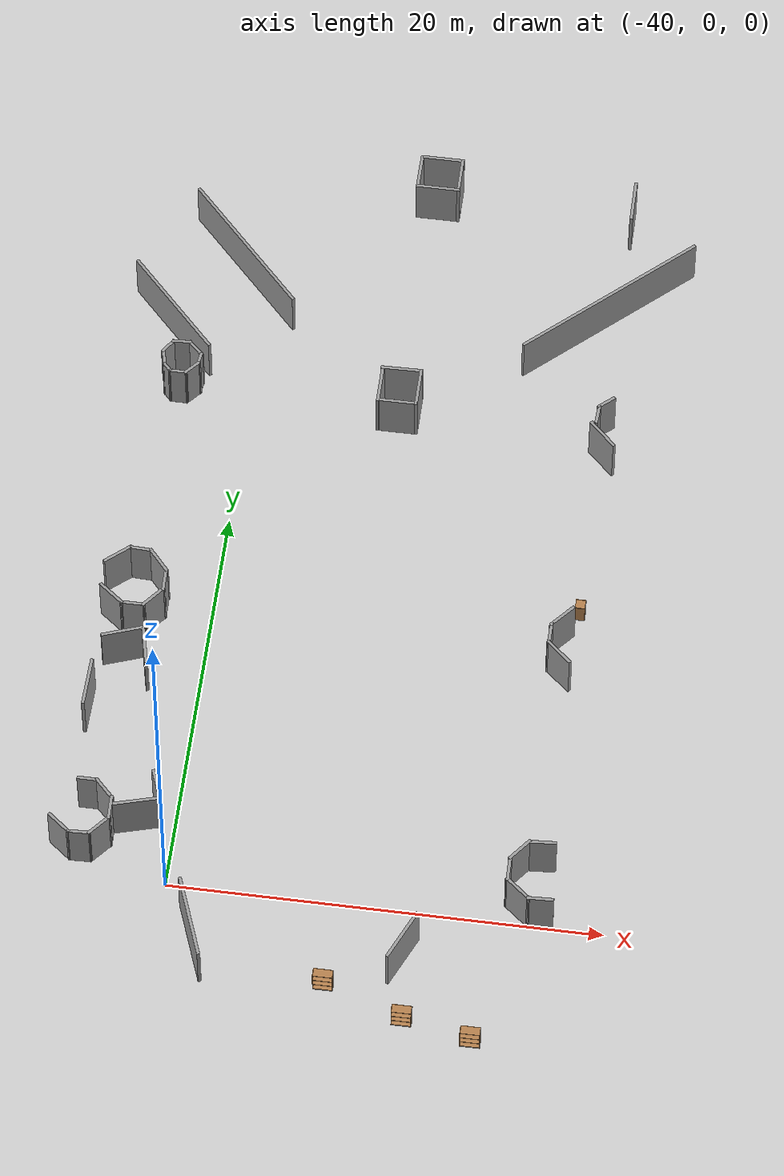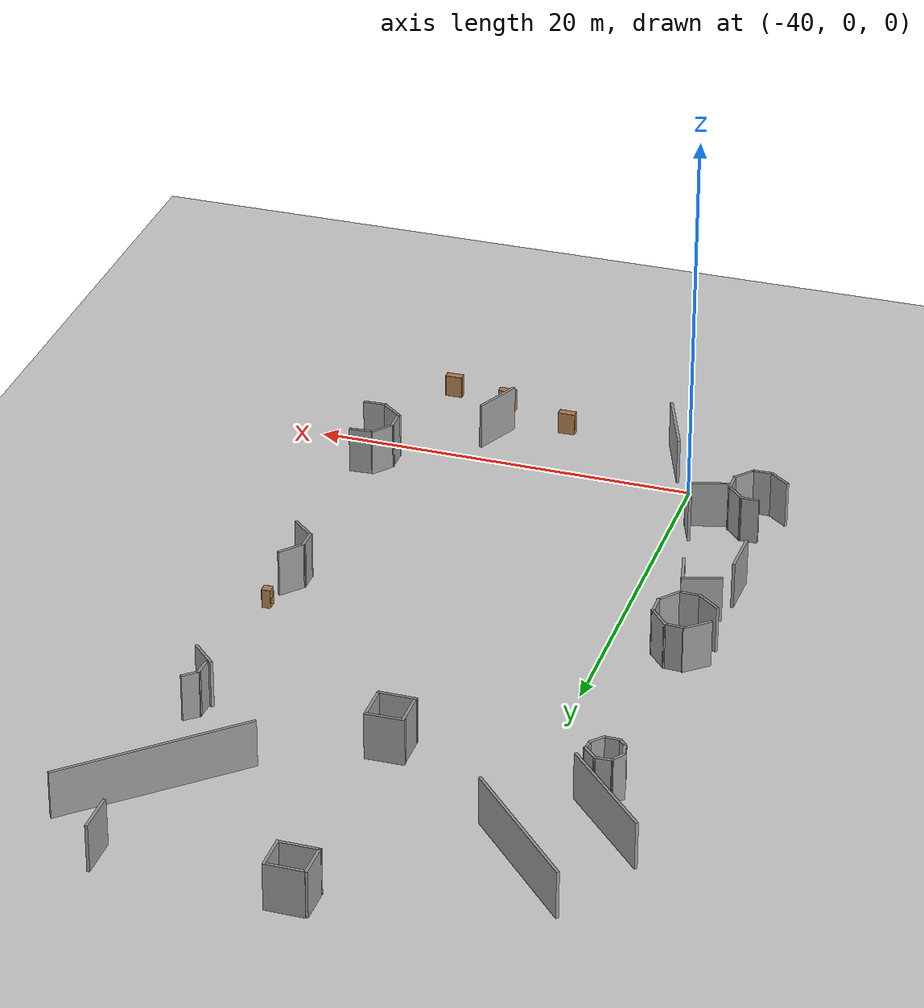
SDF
<sdf version="1.6">
 <world name="default">
  <model name="ground_plane">
   <static>1</static>
   <link name="link">
    <collision name="collision">
     <geometry><plane><normal>0 0 1</normal><size>100 100</size></plane></geometry>
     <surface><friction><ode><mu>100</mu><mu2>50</mu2></ode></friction></surface>
    </collision>
    <visual name="visual">
     <cast_shadows>0</cast_shadows>
     <geometry><plane><normal>0 0 1</normal><size>100 100</size></plane></geometry>
     <material>
      <script><uri>file://media/materials/scripts/gazebo.material</uri><name>Gazebo/Grey</name></script>
     </material>
    </visual>
   </link>
  </model>
  <model name="mall_new_reduce_size">
   <pose>-6.8092 7.5529 0 0 -0 0</pose>
   <link name="Wall_106">
    <collision name="Wall_106_Collision">
     <geometry><box><size>0.88293 0.15 2.5</size></box></geometry>
     <pose>0 0 1.25 0 -0 0</pose>
    </collision>
    <visual name="Wall_106_Visual">
     <pose>0 0 1.25 0 -0 0</pose>
     <geometry><box><size>0.88293 0.15 2.5</size></box></geometry>
     <material>
      <script><uri>file://media/materials/scripts/gazebo.material</uri><name>Gazebo/Grey</name></script>
      <ambient>1 1 1 1</ambient>
     </material>
     <meta><layer>0</layer></meta>
    </visual>
    <pose>-37.2247 20.3731 0 0 -0 1.00343</pose>
   </link>
   <link name="Wall_107">
    <collision name="Wall_107_Collision">
     <geometry><box><size>0.940533 0.15 2.5</size></box></geometry>
     <pose>0 0 1.25 0 -0 0</pose>
    </collision>
    <visual name="Wall_107_Visual">
     <pose>0 0 1.25 0 -0 0</pose>
     <geometry><box><size>0.940533 0.15 2.5</size></box></geometry>
     <material>
      <script><uri>file://media/materials/scripts/gazebo.material</uri><name>Gazebo/Grey</name></script>
      <ambient>1 1 1 1</ambient>
     </material>
     <meta><layer>0</layer></meta>
    </visual>
    <pose>-36.633 20.7072 0 0 -0 0.04939</pose>
   </link>
   <link name="Wall_108">
    <collision name="Wall_108_Collision">
     <geometry><box><size>1.04338 0.15 2.5</size></box></geometry>
     <pose>0 0 1.25 0 -0 0</pose>
    </collision>
    <visual name="Wall_108_Visual">
     <pose>0 0 1.25 0 -0 0</pose>
     <geometry><box><size>1.04338 0.15 2.5</size></box></geometry>
     <material>
      <script><uri>file://media/materials/scripts/gazebo.material</uri><name>Gazebo/Grey</name></script>
      <ambient>1 1 1 1</ambient>
     </material>
     <meta><layer>0</layer></meta>
    </visual>
    <pose>-35.9265 20.4122 0 0 -0 -0.780985</pose>
   </link>
   <link name="Wall_109">
    <collision name="Wall_109_Collision">
     <geometry><box><size>0.676427 0.15 2.5</size></box></geometry>
     <pose>0 0 1.25 0 -0 0</pose>
    </collision>
    <visual name="Wall_109_Visual">
     <pose>0 0 1.25 0 -0 0</pose>
     <geometry><box><size>0.676427 0.15 2.5</size></box></geometry>
     <material>
      <script><uri>file://media/materials/scripts/gazebo.material</uri><name>Gazebo/Grey</name></script>
      <ambient>1 1 1 1</ambient>
     </material>
     <meta><layer>0</layer></meta>
    </visual>
    <pose>-35.6455 19.8364 0 0 -0 -1.68757</pose>
   </link>
   <link name="Wall_110">
    <collision name="Wall_110_Collision">
     <geometry><box><size>0.945582 0.15 2.5</size></box></geometry>
     <pose>0 0 1.25 0 -0 0</pose>
    </collision>
    <visual name="Wall_110_Visual">
     <pose>0 0 1.25 0 -0 0</pose>
     <geometry><box><size>0.945582 0.15 2.5</size></box></geometry>
     <material>
      <script><uri>file://media/materials/scripts/gazebo.material</uri><name>Gazebo/Grey</name></script>
      <ambient>1 1 1 1</ambient>
     </material>
     <meta><layer>0</layer></meta>
    </visual>
    <pose>-35.9305 19.2738 0 0 -0 -2.28278</pose>
   </link>
   <link name="Wall_111">
    <collision name="Wall_111_Collision">
     <geometry><box><size>0.906136 0.15 2.5</size></box></geometry>
     <pose>0 0 1.25 0 -0 0</pose>
    </collision>
    <visual name="Wall_111_Visual">
     <pose>0 0 1.25 0 -0 0</pose>
     <geometry><box><size>0.906136 0.15 2.5</size></box></geometry>
     <material>
      <script><uri>file://media/materials/scripts/gazebo.material</uri><name>Gazebo/Grey</name></script>
      <ambient>1 1 1 1</ambient>
     </material>
     <meta><layer>0</layer></meta>
    </visual>
    <pose>-36.5684 18.981 0 0 -0 3.13422</pose>
   </link>
   <link name="Wall_112">
    <collision name="Wall_112_Collision">
     <geometry><box><size>0.599997 0.15 2.5</size></box></geometry>
     <pose>0 0 1.25 0 -0 0</pose>
    </collision>
    <visual name="Wall_112_Visual">
     <pose>0 0 1.25 0 -0 0</pose>
     <geometry><box><size>0.599997 0.15 2.5</size></box></geometry>
     <material>
      <script><uri>file://media/materials/scripts/gazebo.material</uri><name>Gazebo/Grey</name></script>
      <ambient>1 1 1 1</ambient>
     </material>
     <meta><layer>0</layer></meta>
    </visual>
    <pose>-37.1032 19.1505 0 0 -0 2.30701</pose>
   </link>
   <link name="Wall_116">
    <collision name="Wall_116_Collision">
     <geometry><box><size>0.795039 0.15 2.5</size></box></geometry>
     <pose>0 0 1.25 0 -0 0</pose>
    </collision>
    <visual name="Wall_116_Visual">
     <pose>0 0 1.25 0 -0 0</pose>
     <geometry><box><size>0.795039 0.15 2.5</size></box></geometry>
     <material>
      <script><uri>file://media/materials/scripts/gazebo.material</uri><name>Gazebo/Grey</name></script>
      <ambient>1 1 1 1</ambient>
     </material>
     <meta><layer>0</layer></meta>
    </visual>
    <pose>-37.3234 19.6378 0 0 -0 1.78689</pose>
   </link>
   <link name="Wall_120">
    <collision name="Wall_120_Collision">
     <geometry><box><size>2 0.15 2.5</size></box></geometry>
     <pose>0 0 1.25 0 -0 0</pose>
    </collision>
    <visual name="Wall_120_Visual">
     <pose>0 0 1.25 0 -0 0</pose>
     <geometry><box><size>2 0.15 2.5</size></box></geometry>
     <material>
      <script><uri>file://media/materials/scripts/gazebo.material</uri><name>Gazebo/Grey</name></script>
      <ambient>1 1 1 1</ambient>
     </material>
     <meta><layer>0</layer></meta>
    </visual>
    <pose>-26.9558 19.541 0 0 -0 -1.5708</pose>
   </link>
   <link name="Wall_121">
    <collision name="Wall_121_Collision">
     <geometry><box><size>1.9668 0.15 2.5</size></box></geometry>
     <pose>0 0 1.25 0 -0 0</pose>
    </collision>
    <visual name="Wall_121_Visual">
     <pose>0 0 1.25 0 -0 0</pose>
     <geometry><box><size>1.9668 0.15 2.5</size></box></geometry>
     <material>
      <script><uri>file://media/materials/scripts/gazebo.material</uri><name>Gazebo/Grey</name></script>
      <ambient>1 1 1 1</ambient>
     </material>
     <meta><layer>0</layer></meta>
    </visual>
    <pose>-26.0474 18.619 0 0 -0 0.003382</pose>
   </link>
   <link name="Wall_122">
    <collision name="Wall_122_Collision">
     <geometry><box><size>2.02653 0.15 2.5</size></box></geometry>
     <pose>0 0 1.25 0 -0 0</pose>
    </collision>
    <visual name="Wall_122_Visual">
     <pose>0 0 1.25 0 -0 0</pose>
     <geometry><box><size>2.02653 0.15 2.5</size></box></geometry>
     <material>
      <script><uri>file://media/materials/scripts/gazebo.material</uri><name>Gazebo/Grey</name></script>
      <ambient>1 1 1 1</ambient>
     </material>
     <meta><layer>0</layer></meta>
    </visual>
    <pose>-25.1383 19.554 0 0 -0 1.57003</pose>
   </link>
   <link name="Wall_123">
    <collision name="Wall_123_Collision">
     <geometry><box><size>1.99983 0.15 2.5</size></box></geometry>
     <pose>0 0 1.25 0 -0 0</pose>
    </collision>
    <visual name="Wall_123_Visual">
     <pose>0 0 1.25 0 -0 0</pose>
     <geometry><box><size>1.99983 0.15 2.5</size></box></geometry>
     <material>
      <script><uri>file://media/materials/scripts/gazebo.material</uri><name>Gazebo/Grey</name></script>
      <ambient>1 1 1 1</ambient>
     </material>
     <meta><layer>0</layer></meta>
    </visual>
    <pose>-26.056 20.4954 0 0 -0 -3.12426</pose>
   </link>
   <link name="Wall_17">
    <collision name="Wall_17_Collision">
     <geometry><box><size>6.11812 0.15 2.5</size></box></geometry>
     <pose>0 0 1.25 0 -0 0</pose>
    </collision>
    <visual name="Wall_17_Visual">
     <pose>0 0 1.25 0 -0 0</pose>
     <geometry><box><size>6.11812 0.15 2.5</size></box></geometry>
     <material>
      <script><uri>file://media/materials/scripts/gazebo.material</uri><name>Gazebo/Grey</name></script>
      <ambient>1 1 1 1</ambient>
     </material>
     <meta><layer>0</layer></meta>
    </visual>
    <pose>-37.3721 22.8899 0 0 -0 -0.823537</pose>
   </link>
   <link name="Wall_23">
    <collision name="Wall_23_Collision">
     <geometry><box><size>8.04183 0.15 2.5</size></box></geometry>
     <pose>0 0 1.25 0 -0 0</pose>
    </collision>
    <visual name="Wall_23_Visual">
     <pose>0 0 1.25 0 -0 0</pose>
     <geometry><box><size>8.04183 0.15 2.5</size></box></geometry>
     <material>
      <script><uri>file://media/materials/scripts/gazebo.material</uri><name>Gazebo/Grey</name></script>
      <ambient>1 1 1 1</ambient>
     </material>
     <meta><layer>0</layer></meta>
    </visual>
    <pose>-34.4403 26.7968 0 0 -0 -0.828664</pose>
   </link>
   <link name="Wall_299">
    <collision name="Wall_299_Collision">
     <geometry><box><size>1.25244 0.15 2.5</size></box></geometry>
     <pose>0 0 1.25 0 -0 0</pose>
    </collision>
    <visual name="Wall_299_Visual">
     <pose>0 0 1.25 0 -0 0</pose>
     <geometry><box><size>1.25244 0.15 2.5</size></box></geometry>
     <material>
      <script><uri>file://media/materials/scripts/gazebo.material</uri><name>Gazebo/Grey</name></script>
      <ambient>1 1 1 1</ambient>
     </material>
     <meta><layer>0</layer></meta>
    </visual>
    <pose>-16.3634 -4.50577 0 0 -0 0.066556</pose>
   </link>
   <link name="Wall_303">
    <collision name="Wall_303_Collision">
     <geometry><box><size>1.23632 0.15 2.5</size></box></geometry>
     <pose>0 0 1.25 0 -0 0</pose>
    </collision>
    <visual name="Wall_303_Visual">
     <pose>0 0 1.25 0 -0 0</pose>
     <geometry><box><size>1.23632 0.15 2.5</size></box></geometry>
     <material>
      <script><uri>file://media/materials/scripts/gazebo.material</uri><name>Gazebo/Grey</name></script>
      <ambient>1 1 1 1</ambient>
     </material>
     <meta><layer>0</layer></meta>
    </visual>
    <pose>-16.1437 -7.44622 0 0 -0 -3.10299</pose>
   </link>
   <link name="Wall_304">
    <collision name="Wall_304_Collision">
     <geometry><box><size>1.52701 0.15 2.5</size></box></geometry>
     <pose>0 0 1.25 0 -0 0</pose>
    </collision>
    <visual name="Wall_304_Visual">
     <pose>0 0 1.25 0 -0 0</pose>
     <geometry><box><size>1.52701 0.15 2.5</size></box></geometry>
     <material>
      <script><uri>file://media/materials/scripts/gazebo.material</uri><name>Gazebo/Grey</name></script>
      <ambient>1 1 1 1</ambient>
     </material>
     <meta><layer>0</layer></meta>
    </visual>
    <pose>-17.2005 -7.03707 0 0 -0 2.45115</pose>
   </link>
   <link name="Wall_305">
    <collision name="Wall_305_Collision">
     <geometry><box><size>1.2495 0.15 2.5</size></box></geometry>
     <pose>0 0 1.25 0 -0 0</pose>
    </collision>
    <visual name="Wall_305_Visual">
     <pose>0 0 1.25 0 -0 0</pose>
     <geometry><box><size>1.2495 0.15 2.5</size></box></geometry>
     <material>
      <script><uri>file://media/materials/scripts/gazebo.material</uri><name>Gazebo/Grey</name></script>
      <ambient>1 1 1 1</ambient>
     </material>
     <meta><layer>0</layer></meta>
    </visual>
    <pose>-17.7276 -6.04885 0 0 -0 1.57925</pose>
   </link>
   <link name="Wall_306">
    <collision name="Wall_306_Collision">
     <geometry><box><size>1.3668 0.15 2.5</size></box></geometry>
     <pose>0 0 1.25 0 -0 0</pose>
    </collision>
    <visual name="Wall_306_Visual">
     <pose>0 0 1.25 0 -0 0</pose>
     <geometry><box><size>1.3668 0.15 2.5</size></box></geometry>
     <material>
      <script><uri>file://media/materials/scripts/gazebo.material</uri><name>Gazebo/Grey</name></script>
      <ambient>1 1 1 1</ambient>
     </material>
     <meta><layer>0</layer></meta>
    </visual>
    <pose>-17.3575 -5.01145 0 0 -0 0.907215</pose>
   </link>
   <link name="Wall_309">
    <collision name="Wall_309_Collision">
     <geometry><box><size>2.66375 0.15 2.5</size></box></geometry>
     <pose>0 0 1.25 0 -0 0</pose>
    </collision>
    <visual name="Wall_309_Visual">
     <pose>0 0 1.25 0 -0 0</pose>
     <geometry><box><size>2.66375 0.15 2.5</size></box></geometry>
     <material>
      <script><uri>file://media/materials/scripts/gazebo.material</uri><name>Gazebo/Grey</name></script>
      <ambient>1 1 1 1</ambient>
     </material>
     <meta><layer>0</layer></meta>
    </visual>
    <pose>-22.0492 -10.0757 0 0 -0 1.15356</pose>
   </link>
   <link name="Wall_317">
    <collision name="Wall_317_Collision">
     <geometry><box><size>4.0797 0.15 2.5</size></box></geometry>
     <pose>0 0 1.25 0 -0 0</pose>
    </collision>
    <visual name="Wall_317_Visual">
     <pose>0 0 1.25 0 -0 0</pose>
     <geometry><box><size>4.0797 0.15 2.5</size></box></geometry>
     <material>
      <script><uri>file://media/materials/scripts/gazebo.material</uri><name>Gazebo/Grey</name></script>
      <ambient>1 1 1 1</ambient>
     </material>
     <meta><layer>0</layer></meta>
    </visual>
    <pose>-31.6512 -10.3768 0 0 -0 -1.21551</pose>
   </link>
   <link name="Wall_335">
    <collision name="Wall_335_Collision">
     <geometry><box><size>1.56516 0.15 2.5</size></box></geometry>
     <pose>0 0 1.25 0 -0 0</pose>
    </collision>
    <visual name="Wall_335_Visual">
     <pose>0 0 1.25 0 -0 0</pose>
     <geometry><box><size>1.56516 0.15 2.5</size></box></geometry>
     <material>
      <script><uri>file://media/materials/scripts/gazebo.material</uri><name>Gazebo/Grey</name></script>
      <ambient>1 1 1 1</ambient>
     </material>
     <meta><layer>0</layer></meta>
    </visual>
    <pose>-16.8295 5.70779 0 0 -0 2.41041</pose>
   </link>
   <link name="Wall_336">
    <collision name="Wall_336_Collision">
     <geometry><box><size>1.15225 0.15 2.5</size></box></geometry>
     <pose>0 0 1.25 0 -0 0</pose>
    </collision>
    <visual name="Wall_336_Visual">
     <pose>0 0 1.25 0 -0 0</pose>
     <geometry><box><size>1.15225 0.15 2.5</size></box></geometry>
     <material>
      <script><uri>file://media/materials/scripts/gazebo.material</uri><name>Gazebo/Grey</name></script>
      <ambient>1 1 1 1</ambient>
     </material>
     <meta><layer>0</layer></meta>
    </visual>
    <pose>-17.3514 6.67174 0 0 -0 1.56118</pose>
   </link>
   <link name="Wall_337">
    <collision name="Wall_337_Collision">
     <geometry><box><size>1.51537 0.15 2.5</size></box></geometry>
     <pose>0 0 1.25 0 -0 0</pose>
    </collision>
    <visual name="Wall_337_Visual">
     <pose>0 0 1.25 0 -0 0</pose>
     <geometry><box><size>1.51537 0.15 2.5</size></box></geometry>
     <material>
      <script><uri>file://media/materials/scripts/gazebo.material</uri><name>Gazebo/Grey</name></script>
      <ambient>1 1 1 1</ambient>
     </material>
     <meta><layer>0</layer></meta>
    </visual>
    <pose>-16.9005 7.68 0 0 -0 0.858721</pose>
   </link>
   <link name="Wall_340">
    <collision name="Wall_340_Collision">
     <geometry><box><size>1.61603 0.15 2.5</size></box></geometry>
     <pose>0 0 1.25 0 -0 0</pose>
    </collision>
    <visual name="Wall_340_Visual">
     <pose>0 0 1.25 0 -0 0</pose>
     <geometry><box><size>1.61603 0.15 2.5</size></box></geometry>
     <material>
      <script><uri>file://media/materials/scripts/gazebo.material</uri><name>Gazebo/Grey</name></script>
      <ambient>1 1 1 1</ambient>
     </material>
     <meta><layer>0</layer></meta>
    </visual>
    <pose>-34.1129 -3.77256 0 0 -0 -1.20963</pose>
   </link>
   <link name="Wall_341">
    <collision name="Wall_341_Collision">
     <geometry><box><size>2.32014 0.15 2.5</size></box></geometry>
     <pose>0 0 1.25 0 -0 0</pose>
    </collision>
    <visual name="Wall_341_Visual">
     <pose>0 0 1.25 0 -0 0</pose>
     <geometry><box><size>2.32014 0.15 2.5</size></box></geometry>
     <material>
      <script><uri>file://media/materials/scripts/gazebo.material</uri><name>Gazebo/Grey</name></script>
      <ambient>1 1 1 1</ambient>
     </material>
     <meta><layer>0</layer></meta>
    </visual>
    <pose>-34.8895 -4.75363 0 0 -0 -2.86593</pose>
   </link>
   <link name="Wall_344">
    <collision name="Wall_344_Collision">
     <geometry><box><size>1 0.15 2.5</size></box></geometry>
     <pose>0 0 1.25 0 -0 0</pose>
    </collision>
    <visual name="Wall_344_Visual">
     <pose>0 0 1.25 0 -0 0</pose>
     <geometry><box><size>1 0.15 2.5</size></box></geometry>
     <material>
      <script><uri>file://media/materials/scripts/gazebo.material</uri><name>Gazebo/Grey</name></script>
      <ambient>1 1 1 1</ambient>
     </material>
     <meta><layer>0</layer></meta>
    </visual>
    <pose>-37.269 -3.87943 0 0 -0 0</pose>
   </link>
   <link name="Wall_345">
    <collision name="Wall_345_Collision">
     <geometry><box><size>1.30987 0.15 2.5</size></box></geometry>
     <pose>0 0 1.25 0 -0 0</pose>
    </collision>
    <visual name="Wall_345_Visual">
     <pose>0 0 1.25 0 -0 0</pose>
     <geometry><box><size>1.30987 0.15 2.5</size></box></geometry>
     <material>
      <script><uri>file://media/materials/scripts/gazebo.material</uri><name>Gazebo/Grey</name></script>
      <ambient>1 1 1 1</ambient>
     </material>
     <meta><layer>0</layer></meta>
    </visual>
    <pose>-36.4425 -4.29785 0 0 -0 -0.805961</pose>
   </link>
   <link name="Wall_346">
    <collision name="Wall_346_Collision">
     <geometry><box><size>1.24209 0.15 2.5</size></box></geometry>
     <pose>0 0 1.25 0 -0 0</pose>
    </collision>
    <visual name="Wall_346_Visual">
     <pose>0 0 1.25 0 -0 0</pose>
     <geometry><box><size>1.24209 0.15 2.5</size></box></geometry>
     <material>
      <script><uri>file://media/materials/scripts/gazebo.material</uri><name>Gazebo/Grey</name></script>
      <ambient>1 1 1 1</ambient>
     </material>
     <meta><layer>0</layer></meta>
    </visual>
    <pose>-36.0325 -5.24519 0 0 -0 -1.53991</pose>
   </link>
   <link name="Wall_347">
    <collision name="Wall_347_Collision">
     <geometry><box><size>1.31923 0.15 2.5</size></box></geometry>
     <pose>0 0 1.25 0 -0 0</pose>
    </collision>
    <visual name="Wall_347_Visual">
     <pose>0 0 1.25 0 -0 0</pose>
     <geometry><box><size>1.31923 0.15 2.5</size></box></geometry>
     <material>
      <script><uri>file://media/materials/scripts/gazebo.material</uri><name>Gazebo/Grey</name></script>
      <ambient>1 1 1 1</ambient>
     </material>
     <meta><layer>0</layer></meta>
    </visual>
    <pose>-36.396 -6.24199 0 0 -0 -2.26043</pose>
   </link>
   <link name="Wall_348">
    <collision name="Wall_348_Collision">
     <geometry><box><size>1.10725 0.15 2.5</size></box></geometry>
     <pose>0 0 1.25 0 -0 0</pose>
    </collision>
    <visual name="Wall_348_Visual">
     <pose>0 0 1.25 0 -0 0</pose>
     <geometry><box><size>1.10725 0.15 2.5</size></box></geometry>
     <material>
      <script><uri>file://media/materials/scripts/gazebo.material</uri><name>Gazebo/Grey</name></script>
      <ambient>1 1 1 1</ambient>
     </material>
     <meta><layer>0</layer></meta>
    </visual>
    <pose>-37.2547 -6.70987 0 0 -0 -3.10635</pose>
   </link>
   <link name="Wall_349">
    <collision name="Wall_349_Collision">
     <geometry><box><size>1.3639 0.15 2.5</size></box></geometry>
     <pose>0 0 1.25 0 -0 0</pose>
    </collision>
    <visual name="Wall_349_Visual">
     <pose>0 0 1.25 0 -0 0</pose>
     <geometry><box><size>1.3639 0.15 2.5</size></box></geometry>
     <material>
      <script><uri>file://media/materials/scripts/gazebo.material</uri><name>Gazebo/Grey</name></script>
      <ambient>1 1 1 1</ambient>
     </material>
     <meta><layer>0</layer></meta>
    </visual>
    <pose>-38.2094 -6.34212 0 0 -0 2.47312</pose>
   </link>
   <link name="Wall_354">
    <collision name="Wall_354_Collision">
     <geometry><box><size>2.05857 0.15 2.5</size></box></geometry>
     <pose>0 0 1.25 0 -0 0</pose>
    </collision>
    <visual name="Wall_354_Visual">
     <pose>0 0 1.25 0 -0 0</pose>
     <geometry><box><size>2.05857 0.15 2.5</size></box></geometry>
     <material>
      <script><uri>file://media/materials/scripts/gazebo.material</uri><name>Gazebo/Grey</name></script>
      <ambient>1 1 1 1</ambient>
     </material>
     <meta><layer>0</layer></meta>
    </visual>
    <pose>-36.9144 4.20159 0 0 -0 0.346103</pose>
   </link>
   <link name="Wall_355">
    <collision name="Wall_355_Collision">
     <geometry><box><size>1.98834 0.15 2.5</size></box></geometry>
     <pose>0 0 1.25 0 -0 0</pose>
    </collision>
    <visual name="Wall_355_Visual">
     <pose>0 0 1.25 0 -0 0</pose>
     <geometry><box><size>1.98834 0.15 2.5</size></box></geometry>
     <material>
      <script><uri>file://media/materials/scripts/gazebo.material</uri><name>Gazebo/Grey</name></script>
      <ambient>1 1 1 1</ambient>
     </material>
     <meta><layer>0</layer></meta>
    </visual>
    <pose>-35.8124 3.62071 0 0 -0 -1.34665</pose>
   </link>
   <link name="Wall_368">
    <collision name="Wall_368_Collision">
     <geometry><box><size>2.43294 0.15 2.5</size></box></geometry>
     <pose>0 0 1.25 0 -0 0</pose>
    </collision>
    <visual name="Wall_368_Visual">
     <pose>0 0 1.25 0 -0 0</pose>
     <geometry><box><size>2.43294 0.15 2.5</size></box></geometry>
     <material>
      <script><uri>file://media/materials/scripts/gazebo.material</uri><name>Gazebo/Grey</name></script>
      <ambient>1 1 1 1</ambient>
     </material>
     <meta><layer>0</layer></meta>
    </visual>
    <pose>-38.1023 1.28298 0 0 -0 1.54864</pose>
   </link>
   <link name="Wall_38">
    <collision name="Wall_38_Collision">
     <geometry><box><size>1.87759 0.15 2.5</size></box></geometry>
     <pose>0 0 1.25 0 -0 0</pose>
    </collision>
    <visual name="Wall_38_Visual">
     <pose>0 0 1.25 0 -0 0</pose>
     <geometry><box><size>1.87759 0.15 2.5</size></box></geometry>
     <material>
      <script><uri>file://media/materials/scripts/gazebo.material</uri><name>Gazebo/Grey</name></script>
      <ambient>1 1 1 1</ambient>
     </material>
     <meta><layer>0</layer></meta>
    </visual>
    <pose>-26.693 32.1923 0 0 -0 -1.57586</pose>
   </link>
   <link name="Wall_381">
    <collision name="Wall_381_Collision">
     <geometry><box><size>1.0607 0.15 2.5</size></box></geometry>
     <pose>0 0 1.25 0 -0 0</pose>
    </collision>
    <visual name="Wall_381_Visual">
     <pose>0 0 1.25 0 -0 0</pose>
     <geometry><box><size>1.0607 0.15 2.5</size></box></geometry>
     <material>
      <script><uri>file://media/materials/scripts/gazebo.material</uri><name>Gazebo/Grey</name></script>
      <ambient>1 1 1 1</ambient>
     </material>
     <meta><layer>0</layer></meta>
    </visual>
    <pose>-36.7557 8.79735 0 0 -0 -0.048953</pose>
   </link>
   <link name="Wall_382">
    <collision name="Wall_382_Collision">
     <geometry><box><size>1.48403 0.15 2.5</size></box></geometry>
     <pose>0 0 1.25 0 -0 0</pose>
    </collision>
    <visual name="Wall_382_Visual">
     <pose>0 0 1.25 0 -0 0</pose>
     <geometry><box><size>1.48403 0.15 2.5</size></box></geometry>
     <material>
      <script><uri>file://media/materials/scripts/gazebo.material</uri><name>Gazebo/Grey</name></script>
      <ambient>1 1 1 1</ambient>
     </material>
     <meta><layer>0</layer></meta>
    </visual>
    <pose>-35.8638 8.28201 0 0 -0 -0.857017</pose>
   </link>
   <link name="Wall_383">
    <collision name="Wall_383_Collision">
     <geometry><box><size>1.20072 0.15 2.5</size></box></geometry>
     <pose>0 0 1.25 0 -0 0</pose>
    </collision>
    <visual name="Wall_383_Visual">
     <pose>0 0 1.25 0 -0 0</pose>
     <geometry><box><size>1.20072 0.15 2.5</size></box></geometry>
     <material>
      <script><uri>file://media/materials/scripts/gazebo.material</uri><name>Gazebo/Grey</name></script>
      <ambient>1 1 1 1</ambient>
     </material>
     <meta><layer>0</layer></meta>
    </visual>
    <pose>-35.4271 7.25246 0 0 -0 -1.54957</pose>
   </link>
   <link name="Wall_384">
    <collision name="Wall_384_Collision">
     <geometry><box><size>1.37998 0.15 2.5</size></box></geometry>
     <pose>0 0 1.25 0 -0 0</pose>
    </collision>
    <visual name="Wall_384_Visual">
     <pose>0 0 1.25 0 -0 0</pose>
     <geometry><box><size>1.37998 0.15 2.5</size></box></geometry>
     <material>
      <script><uri>file://media/materials/scripts/gazebo.material</uri><name>Gazebo/Grey</name></script>
      <ambient>1 1 1 1</ambient>
     </material>
     <meta><layer>0</layer></meta>
    </visual>
    <pose>-35.8104 6.24615 0 0 -0 -2.24365</pose>
   </link>
   <link name="Wall_385">
    <collision name="Wall_385_Collision">
     <geometry><box><size>1.17938 0.15 2.5</size></box></geometry>
     <pose>0 0 1.25 0 -0 0</pose>
    </collision>
    <visual name="Wall_385_Visual">
     <pose>0 0 1.25 0 -0 0</pose>
     <geometry><box><size>1.17938 0.15 2.5</size></box></geometry>
     <material>
      <script><uri>file://media/materials/scripts/gazebo.material</uri><name>Gazebo/Grey</name></script>
      <ambient>1 1 1 1</ambient>
     </material>
     <meta><layer>0</layer></meta>
    </visual>
    <pose>-36.6967 5.7652 0 0 -0 3.14159</pose>
   </link>
   <link name="Wall_386">
    <collision name="Wall_386_Collision">
     <geometry><box><size>1.51794 0.15 2.5</size></box></geometry>
     <pose>0 0 1.25 0 -0 0</pose>
    </collision>
    <visual name="Wall_386_Visual">
     <pose>0 0 1.25 0 -0 0</pose>
     <geometry><box><size>1.51794 0.15 2.5</size></box></geometry>
     <material>
      <script><uri>file://media/materials/scripts/gazebo.material</uri><name>Gazebo/Grey</name></script>
      <ambient>1 1 1 1</ambient>
     </material>
     <meta><layer>0</layer></meta>
    </visual>
    <pose>-37.7496 6.17559 0 0 -0 2.47754</pose>
   </link>
   <link name="Wall_388">
    <collision name="Wall_388_Collision">
     <geometry><box><size>1.55734 0.15 2.5</size></box></geometry>
     <pose>0 0 1.25 0 -0 0</pose>
    </collision>
    <visual name="Wall_388_Visual">
     <pose>0 0 1.25 0 -0 0</pose>
     <geometry><box><size>1.55734 0.15 2.5</size></box></geometry>
     <material>
      <script><uri>file://media/materials/scripts/gazebo.material</uri><name>Gazebo/Grey</name></script>
      <ambient>1 1 1 1</ambient>
     </material>
     <meta><layer>0</layer></meta>
    </visual>
    <pose>-37.7894 8.39163 0 0 -0 0.713085</pose>
   </link>
   <link name="Wall_40">
    <collision name="Wall_40_Collision">
     <geometry><box><size>2.12677 0.15 2.5</size></box></geometry>
     <pose>0 0 1.25 0 -0 0</pose>
    </collision>
    <visual name="Wall_40_Visual">
     <pose>0 0 1.25 0 -0 0</pose>
     <geometry><box><size>2.12677 0.15 2.5</size></box></geometry>
     <material>
      <script><uri>file://media/materials/scripts/gazebo.material</uri><name>Gazebo/Grey</name></script>
      <ambient>1 1 1 1</ambient>
     </material>
     <meta><layer>0</layer></meta>
    </visual>
    <pose>-25.709 31.3193 0 0 -0 -0.000501</pose>
   </link>
   <link name="Wall_42">
    <collision name="Wall_42_Collision">
     <geometry><box><size>1.90642 0.15 2.5</size></box></geometry>
     <pose>0 0 1.25 0 -0 0</pose>
    </collision>
    <visual name="Wall_42_Visual">
     <pose>0 0 1.25 0 -0 0</pose>
     <geometry><box><size>1.90642 0.15 2.5</size></box></geometry>
     <material>
      <script><uri>file://media/materials/scripts/gazebo.material</uri><name>Gazebo/Grey</name></script>
      <ambient>1 1 1 1</ambient>
     </material>
     <meta><layer>0</layer></meta>
    </visual>
    <pose>-24.7208 32.1883 0 0 -0 1.57103</pose>
   </link>
   <link name="Wall_43">
    <collision name="Wall_43_Collision">
     <geometry><box><size>2 0.15 2.5</size></box></geometry>
     <pose>0 0 1.25 0 -0 0</pose>
    </collision>
    <visual name="Wall_43_Visual">
     <pose>0 0 1.25 0 -0 0</pose>
     <geometry><box><size>2 0.15 2.5</size></box></geometry>
     <material>
      <script><uri>file://media/materials/scripts/gazebo.material</uri><name>Gazebo/Grey</name></script>
      <ambient>1 1 1 1</ambient>
     </material>
     <meta><layer>0</layer></meta>
    </visual>
    <pose>-25.646 33.0752 0 0 -0 3.14159</pose>
   </link>
   <link name="Wall_45">
    <collision name="Wall_45_Collision">
     <geometry><box><size>2.19239 0.15 2.5</size></box></geometry>
     <pose>0 0 1.25 0 -0 0</pose>
    </collision>
    <visual name="Wall_45_Visual">
     <pose>0 0 1.25 0 -0 0</pose>
     <geometry><box><size>2.19239 0.15 2.5</size></box></geometry>
     <material>
      <script><uri>file://media/materials/scripts/gazebo.material</uri><name>Gazebo/Grey</name></script>
      <ambient>1 1 1 1</ambient>
     </material>
     <meta><layer>0</layer></meta>
    </visual>
    <pose>-16.247 31.7587 0 0 -0 -1.5708</pose>
   </link>
   <link name="Wall_57">
    <collision name="Wall_57_Collision">
     <geometry><box><size>10.1653 0.15 2.5</size></box></geometry>
     <pose>0 0 1.25 0 -0 0</pose>
    </collision>
    <visual name="Wall_57_Visual">
     <pose>0 0 1.25 0 -0 0</pose>
     <geometry><box><size>10.1653 0.15 2.5</size></box></geometry>
     <material>
      <script><uri>file://media/materials/scripts/gazebo.material</uri><name>Gazebo/Grey</name></script>
      <ambient>1 1 1 1</ambient>
     </material>
     <meta><layer>0</layer></meta>
    </visual>
    <pose>-16.7712 26.0648 0 0 -0 0.74156</pose>
   </link>
   <link name="Wall_62">
    <collision name="Wall_62_Collision">
     <geometry><box><size>1.75 0.15 2.5</size></box></geometry>
     <pose>0 0 1.25 0 -0 0</pose>
    </collision>
    <visual name="Wall_62_Visual">
     <pose>0 0 1.25 0 -0 0</pose>
     <geometry><box><size>1.75 0.15 2.5</size></box></geometry>
     <material>
      <script><uri>file://media/materials/scripts/gazebo.material</uri><name>Gazebo/Grey</name></script>
      <ambient>1 1 1 1</ambient>
     </material>
     <meta><layer>0</layer></meta>
    </visual>
    <pose>-16.2089 18.0457 0 0 -0 -0.785398</pose>
   </link>
   <link name="Wall_71">
    <collision name="Wall_71_Collision">
     <geometry><box><size>0.984159 0.15 2.5</size></box></geometry>
     <pose>0 0 1.25 0 -0 0</pose>
    </collision>
    <visual name="Wall_71_Visual">
     <pose>0 0 1.25 0 -0 0</pose>
     <geometry><box><size>0.984159 0.15 2.5</size></box></geometry>
     <material>
      <script><uri>file://media/materials/scripts/gazebo.material</uri><name>Gazebo/Grey</name></script>
      <ambient>1 1 1 1</ambient>
     </material>
     <meta><layer>0</layer></meta>
    </visual>
    <pose>-16.2277 19.8542 0 0 -0 -2.41751</pose>
   </link>
   <link name="Wall_72">
    <collision name="Wall_72_Collision">
     <geometry><box><size>1.02754 0.15 2.5</size></box></geometry>
     <pose>0 0 1.25 0 -0 0</pose>
    </collision>
    <visual name="Wall_72_Visual">
     <pose>0 0 1.25 0 -0 0</pose>
     <geometry><box><size>1.02754 0.15 2.5</size></box></geometry>
     <material>
      <script><uri>file://media/materials/scripts/gazebo.material</uri><name>Gazebo/Grey</name></script>
      <ambient>1 1 1 1</ambient>
     </material>
     <meta><layer>0</layer></meta>
    </visual>
    <pose>-16.5528 19.1394 0 0 -0 -1.62581</pose>
   </link>
   <static>1</static>
  </model>
  <model name="bookshelf_1">
   <static>1</static>
   <link name="link">
    <inertial><mass>1</mass></inertial>
    <collision name="back">
     <pose>0 0.005 0.6 0 -0 0</pose>
     <geometry><box><size>0.9 0.01 1.2</size></box></geometry>
    </collision>
    <visual name="visual1">
     <pose>0 0.005 0.6 0 -0 0</pose>
     <geometry><box><size>0.9 0.01 1.2</size></box></geometry>
     <material>
      <script><uri>file://media/materials/scripts/gazebo.material</uri><name>Gazebo/Wood</name></script>
     </material>
    </visual>
    <collision name="left_side">
     <pose>0.45 -0.195 0.6 0 -0 0</pose>
     <geometry><box><size>0.02 0.4 1.2</size></box></geometry>
    </collision>
    <visual name="visual2">
     <pose>0.45 -0.195 0.6 0 -0 0</pose>
     <geometry><box><size>0.02 0.4 1.2</size></box></geometry>
     <material>
      <script><uri>file://media/materials/scripts/gazebo.material</uri><name>Gazebo/Wood</name></script>
     </material>
    </visual>
    <collision name="right_side">
     <pose>-0.45 -0.195 0.6 0 -0 0</pose>
     <geometry><box><size>0.02 0.4 1.2</size></box></geometry>
    </collision>
    <visual name="visual3">
     <pose>-0.45 -0.195 0.6 0 -0 0</pose>
     <geometry><box><size>0.02 0.4 1.2</size></box></geometry>
     <material>
      <script><uri>file://media/materials/scripts/gazebo.material</uri><name>Gazebo/Wood</name></script>
     </material>
    </visual>
    <collision name="bottom">
     <pose>0 -0.195 0.03 0 -0 0</pose>
     <geometry><box><size>0.88 0.4 0.06</size></box></geometry>
    </collision>
    <visual name="visual4">
     <pose>0 -0.195 0.03 0 -0 0</pose>
     <geometry><box><size>0.88 0.4 0.06</size></box></geometry>
     <material>
      <script><uri>file://media/materials/scripts/gazebo.material</uri><name>Gazebo/Wood</name></script>
     </material>
    </visual>
    <collision name="top">
     <pose>0 -0.195 1.19 0 -0 0</pose>
     <geometry><box><size>0.88 0.4 0.02</size></box></geometry>
    </collision>
    <visual name="visual5">
     <pose>0 -0.195 1.19 0 -0 0</pose>
     <geometry><box><size>0.88 0.4 0.02</size></box></geometry>
     <material>
      <script><uri>file://media/materials/scripts/gazebo.material</uri><name>Gazebo/Wood</name></script>
     </material>
    </visual>
    <collision name="low_shelf">
     <pose>0 -0.195 0.43 0 -0 0</pose>
     <geometry><box><size>0.88 0.4 0.02</size></box></geometry>
    </collision>
    <visual name="visual6">
     <pose>0 -0.195 0.43 0 -0 0</pose>
     <geometry><box><size>0.88 0.4 0.02</size></box></geometry>
     <material>
      <script><uri>file://media/materials/scripts/gazebo.material</uri><name>Gazebo/Wood</name></script>
     </material>
    </visual>
    <collision name="high_shelf">
     <pose>0 -0.195 0.8 0 -0 0</pose>
     <geometry><box><size>0.88 0.4 0.02</size></box></geometry>
    </collision>
    <visual name="visual7">
     <pose>0 -0.195 0.8 0 -0 0</pose>
     <geometry><box><size>0.88 0.4 0.02</size></box></geometry>
     <material>
      <script><uri>file://media/materials/scripts/gazebo.material</uri><name>Gazebo/Wood</name></script>
     </material>
    </visual>
   </link>
   <pose>-25.3051 -6.09045 0 0 -0 0</pose>
  </model>
  <model name="bookshelf_10">
   <static>1</static>
   <link name="link">
    <inertial><mass>1</mass></inertial>
    <collision name="back">
     <pose>0 0.005 0.6 0 -0 0</pose>
     <geometry><box><size>0.9 0.01 1.2</size></box></geometry>
    </collision>
    <visual name="visual1">
     <pose>0 0.005 0.6 0 -0 0</pose>
     <geometry><box><size>0.9 0.01 1.2</size></box></geometry>
     <material>
      <script><uri>file://media/materials/scripts/gazebo.material</uri><name>Gazebo/Wood</name></script>
     </material>
    </visual>
    <collision name="left_side">
     <pose>0.45 -0.195 0.6 0 -0 0</pose>
     <geometry><box><size>0.02 0.4 1.2</size></box></geometry>
    </collision>
    <visual name="visual2">
     <pose>0.45 -0.195 0.6 0 -0 0</pose>
     <geometry><box><size>0.02 0.4 1.2</size></box></geometry>
     <material>
      <script><uri>file://media/materials/scripts/gazebo.material</uri><name>Gazebo/Wood</name></script>
     </material>
    </visual>
    <collision name="right_side">
     <pose>-0.45 -0.195 0.6 0 -0 0</pose>
     <geometry><box><size>0.02 0.4 1.2</size></box></geometry>
    </collision>
    <visual name="visual3">
     <pose>-0.45 -0.195 0.6 0 -0 0</pose>
     <geometry><box><size>0.02 0.4 1.2</size></box></geometry>
     <material>
      <script><uri>file://media/materials/scripts/gazebo.material</uri><name>Gazebo/Wood</name></script>
     </material>
    </visual>
    <collision name="bottom">
     <pose>0 -0.195 0.03 0 -0 0</pose>
     <geometry><box><size>0.88 0.4 0.06</size></box></geometry>
    </collision>
    <visual name="visual4">
     <pose>0 -0.195 0.03 0 -0 0</pose>
     <geometry><box><size>0.88 0.4 0.06</size></box></geometry>
     <material>
      <script><uri>file://media/materials/scripts/gazebo.material</uri><name>Gazebo/Wood</name></script>
     </material>
    </visual>
    <collision name="top">
     <pose>0 -0.195 1.19 0 -0 0</pose>
     <geometry><box><size>0.88 0.4 0.02</size></box></geometry>
    </collision>
    <visual name="visual5">
     <pose>0 -0.195 1.19 0 -0 0</pose>
     <geometry><box><size>0.88 0.4 0.02</size></box></geometry>
     <material>
      <script><uri>file://media/materials/scripts/gazebo.material</uri><name>Gazebo/Wood</name></script>
     </material>
    </visual>
    <collision name="low_shelf">
     <pose>0 -0.195 0.43 0 -0 0</pose>
     <geometry><box><size>0.88 0.4 0.02</size></box></geometry>
    </collision>
    <visual name="visual6">
     <pose>0 -0.195 0.43 0 -0 0</pose>
     <geometry><box><size>0.88 0.4 0.02</size></box></geometry>
     <material>
      <script><uri>file://media/materials/scripts/gazebo.material</uri><name>Gazebo/Wood</name></script>
     </material>
    </visual>
    <collision name="high_shelf">
     <pose>0 -0.195 0.8 0 -0 0</pose>
     <geometry><box><size>0.88 0.4 0.02</size></box></geometry>
    </collision>
    <visual name="visual7">
     <pose>0 -0.195 0.8 0 -0 0</pose>
     <geometry><box><size>0.88 0.4 0.02</size></box></geometry>
     <material>
      <script><uri>file://media/materials/scripts/gazebo.material</uri><name>Gazebo/Wood</name></script>
     </material>
    </visual>
   </link>
   <pose>-32.2158 -4.05396 0 0 -0 0</pose>
  </model>
  <model name="bookshelf_13">
   <static>1</static>
   <link name="link">
    <inertial><mass>1</mass></inertial>
    <collision name="back">
     <pose>0 0.005 0.6 0 -0 0</pose>
     <geometry><box><size>0.9 0.01 1.2</size></box></geometry>
    </collision>
    <visual name="visual1">
     <pose>0 0.005 0.6 0 -0 0</pose>
     <geometry><box><size>0.9 0.01 1.2</size></box></geometry>
     <material>
      <script><uri>file://media/materials/scripts/gazebo.material</uri><name>Gazebo/Wood</name></script>
     </material>
    </visual>
    <collision name="left_side">
     <pose>0.45 -0.195 0.6 0 -0 0</pose>
     <geometry><box><size>0.02 0.4 1.2</size></box></geometry>
    </collision>
    <visual name="visual2">
     <pose>0.45 -0.195 0.6 0 -0 0</pose>
     <geometry><box><size>0.02 0.4 1.2</size></box></geometry>
     <material>
      <script><uri>file://media/materials/scripts/gazebo.material</uri><name>Gazebo/Wood</name></script>
     </material>
    </visual>
    <collision name="right_side">
     <pose>-0.45 -0.195 0.6 0 -0 0</pose>
     <geometry><box><size>0.02 0.4 1.2</size></box></geometry>
    </collision>
    <visual name="visual3">
     <pose>-0.45 -0.195 0.6 0 -0 0</pose>
     <geometry><box><size>0.02 0.4 1.2</size></box></geometry>
     <material>
      <script><uri>file://media/materials/scripts/gazebo.material</uri><name>Gazebo/Wood</name></script>
     </material>
    </visual>
    <collision name="bottom">
     <pose>0 -0.195 0.03 0 -0 0</pose>
     <geometry><box><size>0.88 0.4 0.06</size></box></geometry>
    </collision>
    <visual name="visual4">
     <pose>0 -0.195 0.03 0 -0 0</pose>
     <geometry><box><size>0.88 0.4 0.06</size></box></geometry>
     <material>
      <script><uri>file://media/materials/scripts/gazebo.material</uri><name>Gazebo/Wood</name></script>
     </material>
    </visual>
    <collision name="top">
     <pose>0 -0.195 1.19 0 -0 0</pose>
     <geometry><box><size>0.88 0.4 0.02</size></box></geometry>
    </collision>
    <visual name="visual5">
     <pose>0 -0.195 1.19 0 -0 0</pose>
     <geometry><box><size>0.88 0.4 0.02</size></box></geometry>
     <material>
      <script><uri>file://media/materials/scripts/gazebo.material</uri><name>Gazebo/Wood</name></script>
     </material>
    </visual>
    <collision name="low_shelf">
     <pose>0 -0.195 0.43 0 -0 0</pose>
     <geometry><box><size>0.88 0.4 0.02</size></box></geometry>
    </collision>
    <visual name="visual6">
     <pose>0 -0.195 0.43 0 -0 0</pose>
     <geometry><box><size>0.88 0.4 0.02</size></box></geometry>
     <material>
      <script><uri>file://media/materials/scripts/gazebo.material</uri><name>Gazebo/Wood</name></script>
     </material>
    </visual>
    <collision name="high_shelf">
     <pose>0 -0.195 0.8 0 -0 0</pose>
     <geometry><box><size>0.88 0.4 0.02</size></box></geometry>
    </collision>
    <visual name="visual7">
     <pose>0 -0.195 0.8 0 -0 0</pose>
     <geometry><box><size>0.88 0.4 0.02</size></box></geometry>
     <material>
      <script><uri>file://media/materials/scripts/gazebo.material</uri><name>Gazebo/Wood</name></script>
     </material>
    </visual>
   </link>
   <pose>-28.484 -5.41316 0 0 -0 0</pose>
  </model>
  <model name="cabinet_2">
   <static>1</static>
   <link name="cabinet_bottom_plate">
    <inertial>
     <pose>0 0 -1 0 -0 0</pose>
     <inertia><ixx>2.05</ixx><ixy>0</ixy><ixz>0</ixz><iyy>2.05</iyy><iyz>0</iyz><izz>2.05</izz></inertia>
     <mass>25</mass>
    </inertial>
    <collision name="cabinet_bottom_plate_geom">
     <pose>0 0 0.01 0 -0 0</pose>
     <geometry><box><size>0.45 0.45 0.02</size></box></geometry>
    </collision>
    <visual name="cabinet_bottom_plate_geom_visual">
     <pose>0 0 0.01 0 -0 0</pose>
     <geometry><box><size>0.45 0.45 0.02</size></box></geometry>
     <material>
      <script><uri>file://media/materials/scripts/gazebo.material</uri><name>Gazebo/Wood</name></script>
     </material>
    </visual>
    <collision name="cabinet_bottom_plate_geom_cabinet_back_plate">
     <pose>0.235 0 0.51 0 -0 0</pose>
     <geometry><box><size>0.02 0.45 1.02</size></box></geometry>
    </collision>
    <visual name="cabinet_bottom_plate_geom_cabinet_back_plate_visual">
     <pose>0.235 0 0.51 0 -0 0</pose>
     <geometry><box><size>0.02 0.45 1.02</size></box></geometry>
     <material>
      <script><uri>file://media/materials/scripts/gazebo.material</uri><name>Gazebo/Wood</name></script>
     </material>
    </visual>
    <collision name="cabinet_bottom_plate_geom_cabinet_left_plate">
     <pose>0 0.235 0.51 0 -0 0</pose>
     <geometry><box><size>0.45 0.02 1.02</size></box></geometry>
    </collision>
    <visual name="cabinet_bottom_plate_geom_cabinet_left_plate_visual">
     <pose>0 0.235 0.51 0 -0 0</pose>
     <geometry><box><size>0.45 0.02 1.02</size></box></geometry>
     <material>
      <script><uri>file://media/materials/scripts/gazebo.material</uri><name>Gazebo/Wood</name></script>
     </material>
    </visual>
    <collision name="cabinet_bottom_plate_geom_cabinet_middle_plate">
     <pose>0 0 0.51 0 -0 0</pose>
     <geometry><box><size>0.45 0.45 0.02</size></box></geometry>
    </collision>
    <visual name="cabinet_bottom_plate_geom_cabinet_middle_plate_visual">
     <pose>0 0 0.51 0 -0 0</pose>
     <geometry><box><size>0.45 0.45 0.02</size></box></geometry>
     <material>
      <script><uri>file://media/materials/scripts/gazebo.material</uri><name>Gazebo/Wood</name></script>
     </material>
    </visual>
    <collision name="cabinet_bottom_plate_geom_cabinet_right_plate">
     <pose>0 -0.235 0.51 0 -0 0</pose>
     <geometry><box><size>0.45 0.02 1.02</size></box></geometry>
    </collision>
    <visual name="cabinet_bottom_plate_geom_cabinet_right_plate_visual">
     <pose>0 -0.235 0.51 0 -0 0</pose>
     <geometry><box><size>0.45 0.02 1.02</size></box></geometry>
     <material>
      <script><uri>file://media/materials/scripts/gazebo.material</uri><name>Gazebo/Wood</name></script>
     </material>
    </visual>
    <collision name="cabinet_bottom_plate_geom_cabinet_top_plate">
     <pose>0 0 1.01 0 -0 0</pose>
     <geometry><box><size>0.45 0.45 0.02</size></box></geometry>
    </collision>
    <visual name="cabinet_bottom_plate_geom_cabinet_top_plate_visual">
     <pose>0 0 1.01 0 -0 0</pose>
     <geometry><box><size>0.45 0.45 0.02</size></box></geometry>
     <material>
      <script><uri>file://media/materials/scripts/gazebo.material</uri><name>Gazebo/Wood</name></script>
     </material>
    </visual>
   </link>
   <pose>-23.028 16.9185 0 0 -0 0</pose>
  </model>
 </world>
</sdf>
